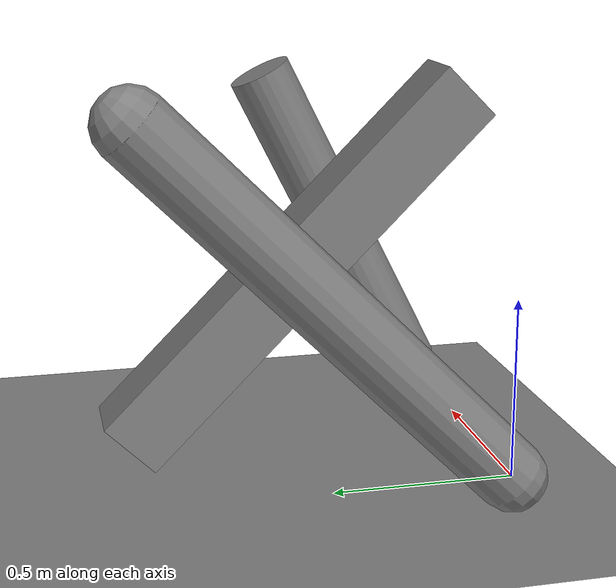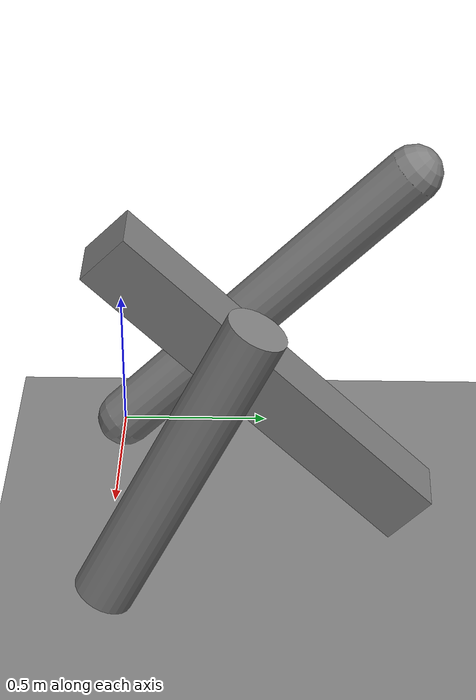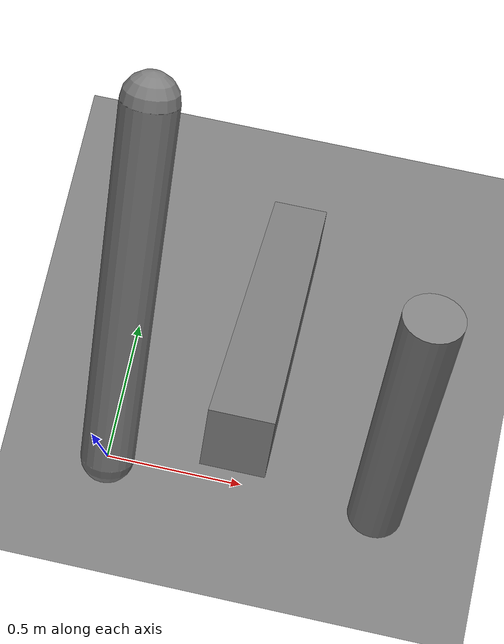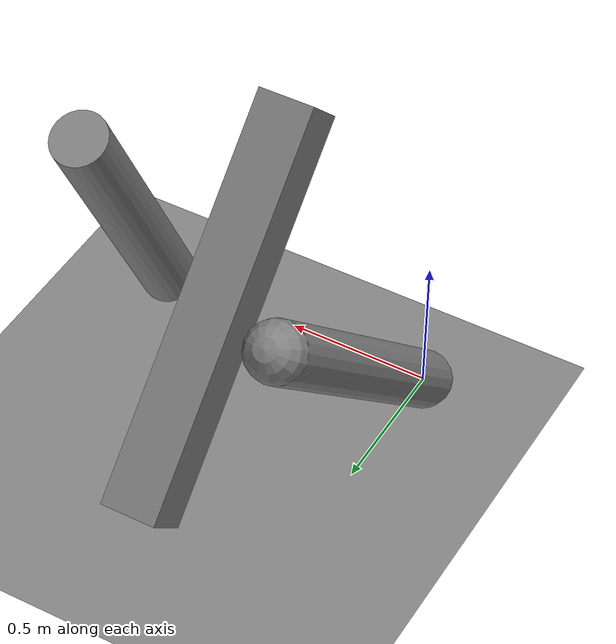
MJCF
<mujoco model="worldgeom">
    <worldbody>
        <geom type="plane" size="0 0 .1" pos="0 0 -.1"/>
        <geom type="capsule" size="0.1" fromto="0 0 0 0 1 1"/>
        <geom type="box" size="0.1" fromto=".5 1 0 .5 0 1"/>
        <geom type="cylinder" size="0.1" fromto="1 0 0 1 0.5 1"/>
    </worldbody>
</mujoco>
